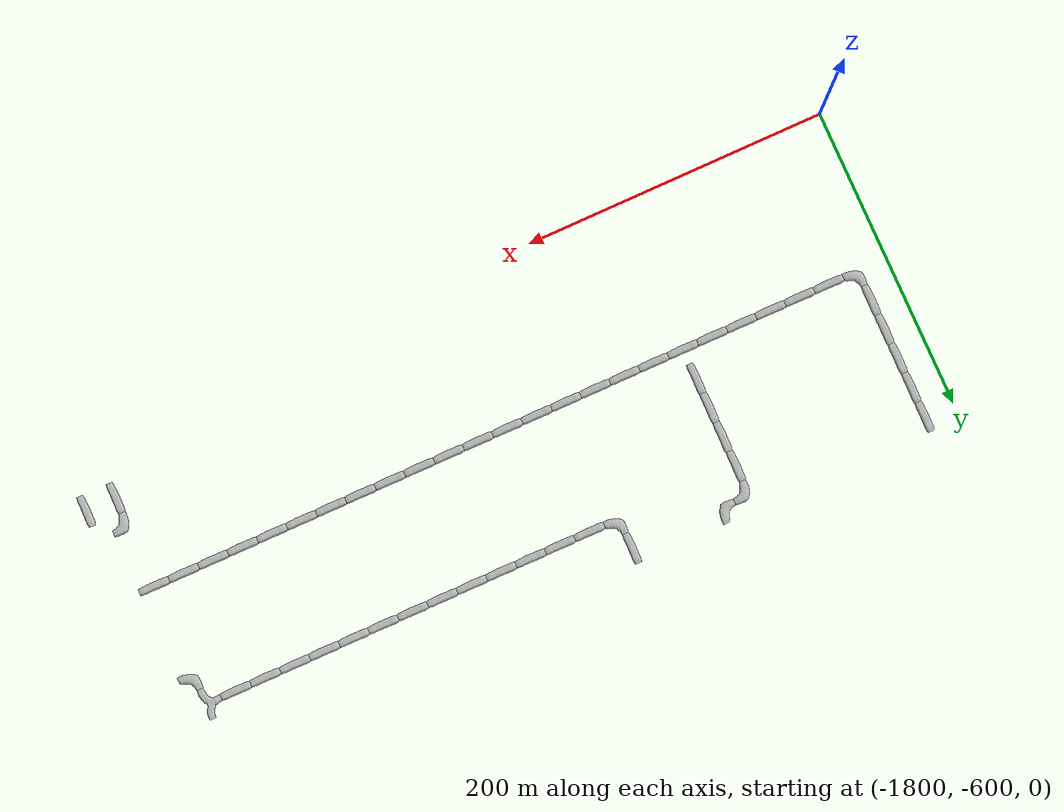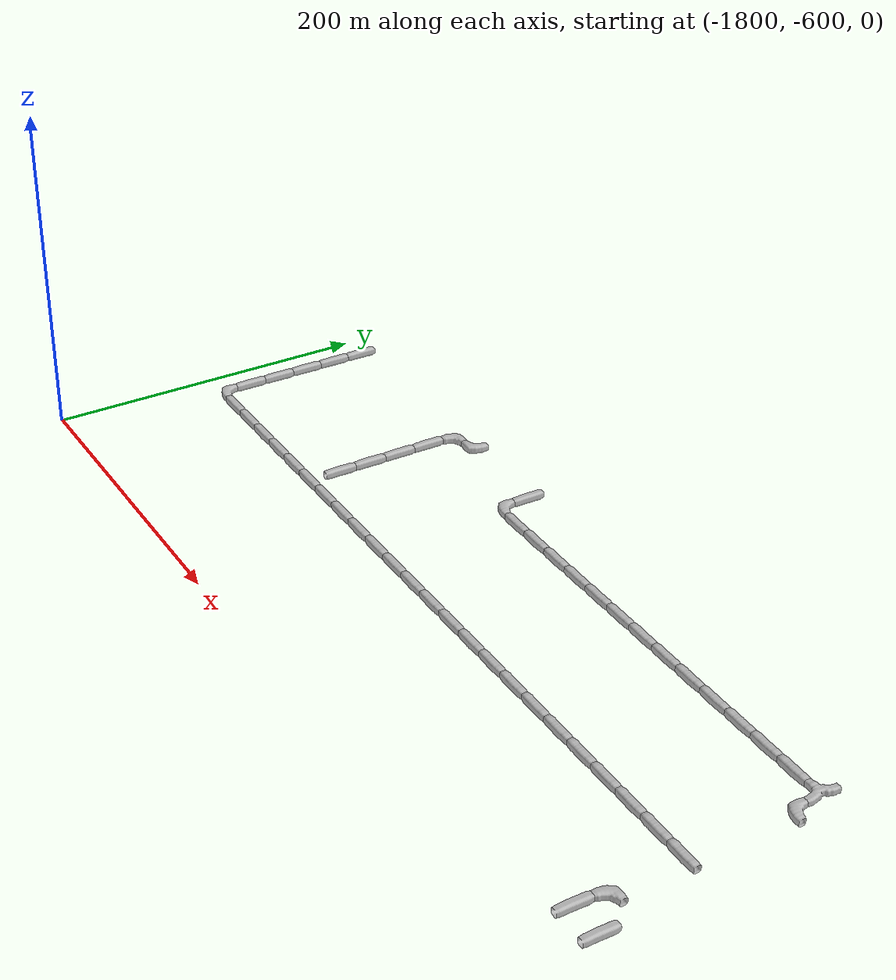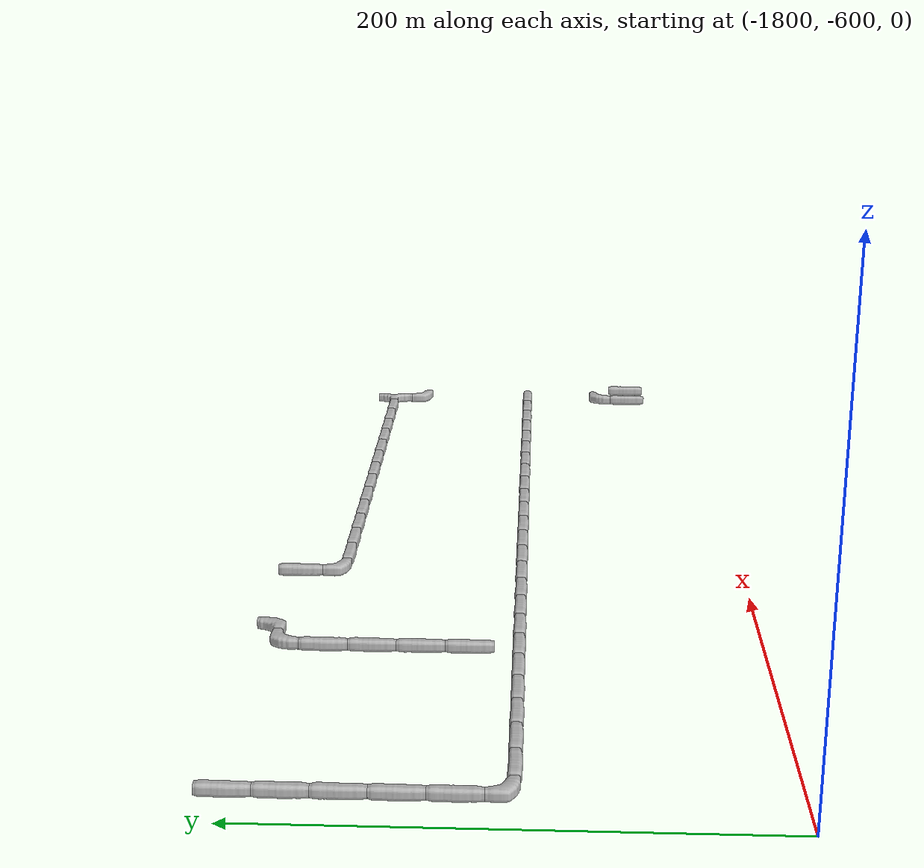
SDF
<sdf version="1.6">
 <world name="cave_32000_16">
  <include>
   <static>true</static>
   <name>cave_-64_-28</name>
   <pose>-1280 -560 0 0 0 0.0</pose>
   <uri>model://cave_straight_20m</uri>
  </include>
  <include>
   <static>true</static>
   <name>cave_-65_-27</name>
   <pose>-1300 -540 0 0 0 -1.5707963267948966</pose>
   <uri>model://cave_L_20m</uri>
  </include>
  <include>
   <static>true</static>
   <name>cave_-65_-28</name>
   <pose>-1300 -560 0 0 0 0.0</pose>
   <uri>model://cave_straight_20m</uri>
  </include>
  <include>
   <static>true</static>
   <name>cave_-65_-25</name>
   <pose>-1300 -500 0 0 0 1.5707963267948966</pose>
   <uri>model://cave_straight_20m</uri>
  </include>
  <include>
   <static>true</static>
   <name>cave_-66_-25</name>
   <pose>-1320 -500 0 0 0 1.5707963267948966</pose>
   <uri>model://cave_straight_20m</uri>
  </include>
  <include>
   <static>true</static>
   <name>cave_-67_-25</name>
   <pose>-1340 -500 0 0 0 1.5707963267948966</pose>
   <uri>model://cave_straight_20m</uri>
  </include>
  <include>
   <static>true</static>
   <name>cave_-68_-25</name>
   <pose>-1360 -500 0 0 0 1.5707963267948966</pose>
   <uri>model://cave_straight_20m</uri>
  </include>
  <include>
   <static>true</static>
   <name>cave_-69_-25</name>
   <pose>-1380 -500 0 0 0 1.5707963267948966</pose>
   <uri>model://cave_straight_20m</uri>
  </include>
  <include>
   <static>true</static>
   <name>cave_-70_-25</name>
   <pose>-1400 -500 0 0 0 1.5707963267948966</pose>
   <uri>model://cave_straight_20m</uri>
  </include>
  <include>
   <static>true</static>
   <name>cave_-71_-25</name>
   <pose>-1420 -500 0 0 0 1.5707963267948966</pose>
   <uri>model://cave_straight_20m</uri>
  </include>
  <include>
   <static>true</static>
   <name>cave_-72_-25</name>
   <pose>-1440 -500 0 0 0 1.5707963267948966</pose>
   <uri>model://cave_straight_20m</uri>
  </include>
  <include>
   <static>true</static>
   <name>cave_-73_-25</name>
   <pose>-1460 -500 0 0 0 1.5707963267948966</pose>
   <uri>model://cave_straight_20m</uri>
  </include>
  <include>
   <static>true</static>
   <name>cave_-74_-25</name>
   <pose>-1480 -500 0 0 0 1.5707963267948966</pose>
   <uri>model://cave_straight_20m</uri>
  </include>
  <include>
   <static>true</static>
   <name>cave_-75_-25</name>
   <pose>-1500 -500 0 0 0 1.5707963267948966</pose>
   <uri>model://cave_straight_20m</uri>
  </include>
  <include>
   <static>true</static>
   <name>cave_-76_-25</name>
   <pose>-1520 -500 0 0 0 1.5707963267948966</pose>
   <uri>model://cave_straight_20m</uri>
  </include>
  <include>
   <static>true</static>
   <name>cave_-77_-25</name>
   <pose>-1540 -500 0 0 0 1.5707963267948966</pose>
   <uri>model://cave_straight_20m</uri>
  </include>
  <include>
   <static>true</static>
   <name>cave_-78_-25</name>
   <pose>-1560 -500 0 0 0 1.5707963267948966</pose>
   <uri>model://cave_straight_20m</uri>
  </include>
  <include>
   <static>true</static>
   <name>cave_-79_-25</name>
   <pose>-1580 -500 0 0 0 1.5707963267948966</pose>
   <uri>model://cave_straight_20m</uri>
  </include>
  <include>
   <static>true</static>
   <name>cave_-80_-25</name>
   <pose>-1600 -500 0 0 0 1.5707963267948966</pose>
   <uri>model://cave_straight_20m</uri>
  </include>
  <include>
   <static>true</static>
   <name>cave_-81_-25</name>
   <pose>-1620 -500 0 0 0 1.5707963267948966</pose>
   <uri>model://cave_straight_20m</uri>
  </include>
  <include>
   <static>true</static>
   <name>cave_-82_-25</name>
   <pose>-1640 -500 0 0 0 1.5707963267948966</pose>
   <uri>model://cave_straight_20m</uri>
  </include>
  <include>
   <static>true</static>
   <name>cave_-83_-25</name>
   <pose>-1660 -500 0 0 0 1.5707963267948966</pose>
   <uri>model://cave_straight_20m</uri>
  </include>
  <include>
   <static>true</static>
   <name>cave_-84_-25</name>
   <pose>-1680 -500 0 0 0 1.5707963267948966</pose>
   <uri>model://cave_straight_20m</uri>
  </include>
  <include>
   <static>true</static>
   <name>cave_-85_-25</name>
   <pose>-1700 -500 0 0 0 1.5707963267948966</pose>
   <uri>model://cave_straight_20m</uri>
  </include>
  <include>
   <static>true</static>
   <name>cave_-86_-25</name>
   <pose>-1720 -500 0 0 0 1.5707963267948966</pose>
   <uri>model://cave_straight_20m</uri>
  </include>
  <include>
   <static>true</static>
   <name>cave_-87_-25</name>
   <pose>-1740 -500 0 0 0 1.5707963267948966</pose>
   <uri>model://cave_straight_20m</uri>
  </include>
  <include>
   <static>true</static>
   <name>cave_-88_-25</name>
   <pose>-1760 -500 0 0 0 1.5707963267948966</pose>
   <uri>model://cave_straight_20m</uri>
  </include>
  <include>
   <static>true</static>
   <name>cave_-89_-25</name>
   <pose>-1780 -500 0 0 0 0.0</pose>
   <uri>model://cave_L_20m</uri>
  </include>
  <include>
   <static>true</static>
   <name>cave_-89_-24</name>
   <pose>-1780 -480 0 0 0 0.0</pose>
   <uri>model://cave_straight_20m</uri>
  </include>
  <include>
   <static>true</static>
   <name>cave_-89_-23</name>
   <pose>-1780 -460 0 0 0 0.0</pose>
   <uri>model://cave_straight_20m</uri>
  </include>
  <include>
   <static>true</static>
   <name>cave_-89_-22</name>
   <pose>-1780 -440 0 0 0 0.0</pose>
   <uri>model://cave_straight_20m</uri>
  </include>
  <include>
   <static>true</static>
   <name>cave_-89_-21</name>
   <pose>-1780 -420 0 0 0 0.0</pose>
   <uri>model://cave_straight_20m</uri>
  </include>
  <include>
   <static>true</static>
   <name>cave_-89_-20</name>
   <pose>-1780 -400 0 0 0 0.0</pose>
   <uri>model://cave_straight_20m</uri>
  </include>
  <include>
   <static>true</static>
   <name>cave_-82_-20</name>
   <pose>-1640 -400 0 0 0 1.5707963267948966</pose>
   <uri>model://cave_L_20m</uri>
  </include>
  <include>
   <static>true</static>
   <name>cave_-83_-20</name>
   <pose>-1660 -400 0 0 0 -1.5707963267948966</pose>
   <uri>model://cave_L_20m</uri>
  </include>
  <include>
   <static>true</static>
   <name>cave_-83_-21</name>
   <pose>-1660 -420 0 0 0 0.0</pose>
   <uri>model://cave_straight_20m</uri>
  </include>
  <include>
   <static>true</static>
   <name>cave_-83_-22</name>
   <pose>-1660 -440 0 0 0 0.0</pose>
   <uri>model://cave_straight_20m</uri>
  </include>
  <include>
   <static>true</static>
   <name>cave_-83_-23</name>
   <pose>-1660 -460 0 0 0 0.0</pose>
   <uri>model://cave_straight_20m</uri>
  </include>
  <include>
   <static>true</static>
   <name>cave_-83_-24</name>
   <pose>-1660 -480 0 0 0 0.0</pose>
   <uri>model://cave_straight_20m</uri>
  </include>
  <include>
   <static>true</static>
   <name>cave_-65_-21</name>
   <pose>-1300 -420 0 0 0 1.5707963267948966</pose>
   <uri>model://cave_3way_20m</uri>
  </include>
  <include>
   <static>true</static>
   <name>cave_-65_-22</name>
   <pose>-1300 -440 0 0 0 0.0</pose>
   <uri>model://cave_L_20m</uri>
  </include>
  <include>
   <static>true</static>
   <name>cave_-66_-21</name>
   <pose>-1320 -420 0 0 0 1.5707963267948966</pose>
   <uri>model://cave_straight_20m</uri>
  </include>
  <include>
   <static>true</static>
   <name>cave_-67_-21</name>
   <pose>-1340 -420 0 0 0 1.5707963267948966</pose>
   <uri>model://cave_straight_20m</uri>
  </include>
  <include>
   <static>true</static>
   <name>cave_-68_-21</name>
   <pose>-1360 -420 0 0 0 1.5707963267948966</pose>
   <uri>model://cave_straight_20m</uri>
  </include>
  <include>
   <static>true</static>
   <name>cave_-69_-21</name>
   <pose>-1380 -420 0 0 0 1.5707963267948966</pose>
   <uri>model://cave_straight_20m</uri>
  </include>
  <include>
   <static>true</static>
   <name>cave_-70_-21</name>
   <pose>-1400 -420 0 0 0 1.5707963267948966</pose>
   <uri>model://cave_straight_20m</uri>
  </include>
  <include>
   <static>true</static>
   <name>cave_-71_-21</name>
   <pose>-1420 -420 0 0 0 1.5707963267948966</pose>
   <uri>model://cave_straight_20m</uri>
  </include>
  <include>
   <static>true</static>
   <name>cave_-72_-21</name>
   <pose>-1440 -420 0 0 0 1.5707963267948966</pose>
   <uri>model://cave_straight_20m</uri>
  </include>
  <include>
   <static>true</static>
   <name>cave_-73_-21</name>
   <pose>-1460 -420 0 0 0 1.5707963267948966</pose>
   <uri>model://cave_straight_20m</uri>
  </include>
  <include>
   <static>true</static>
   <name>cave_-74_-21</name>
   <pose>-1480 -420 0 0 0 1.5707963267948966</pose>
   <uri>model://cave_straight_20m</uri>
  </include>
  <include>
   <static>true</static>
   <name>cave_-75_-21</name>
   <pose>-1500 -420 0 0 0 1.5707963267948966</pose>
   <uri>model://cave_straight_20m</uri>
  </include>
  <include>
   <static>true</static>
   <name>cave_-76_-21</name>
   <pose>-1520 -420 0 0 0 1.5707963267948966</pose>
   <uri>model://cave_straight_20m</uri>
  </include>
  <include>
   <static>true</static>
   <name>cave_-77_-21</name>
   <pose>-1540 -420 0 0 0 1.5707963267948966</pose>
   <uri>model://cave_straight_20m</uri>
  </include>
  <include>
   <static>true</static>
   <name>cave_-78_-21</name>
   <pose>-1560 -420 0 0 0 1.5707963267948966</pose>
   <uri>model://cave_straight_20m</uri>
  </include>
  <include>
   <static>true</static>
   <name>cave_-79_-21</name>
   <pose>-1580 -420 0 0 0 0.0</pose>
   <uri>model://cave_L_20m</uri>
  </include>
  <include>
   <static>true</static>
   <name>cave_-79_-20</name>
   <pose>-1580 -400 0 0 0 0.0</pose>
   <uri>model://cave_straight_20m</uri>
  </include>
 </world>
</sdf>
